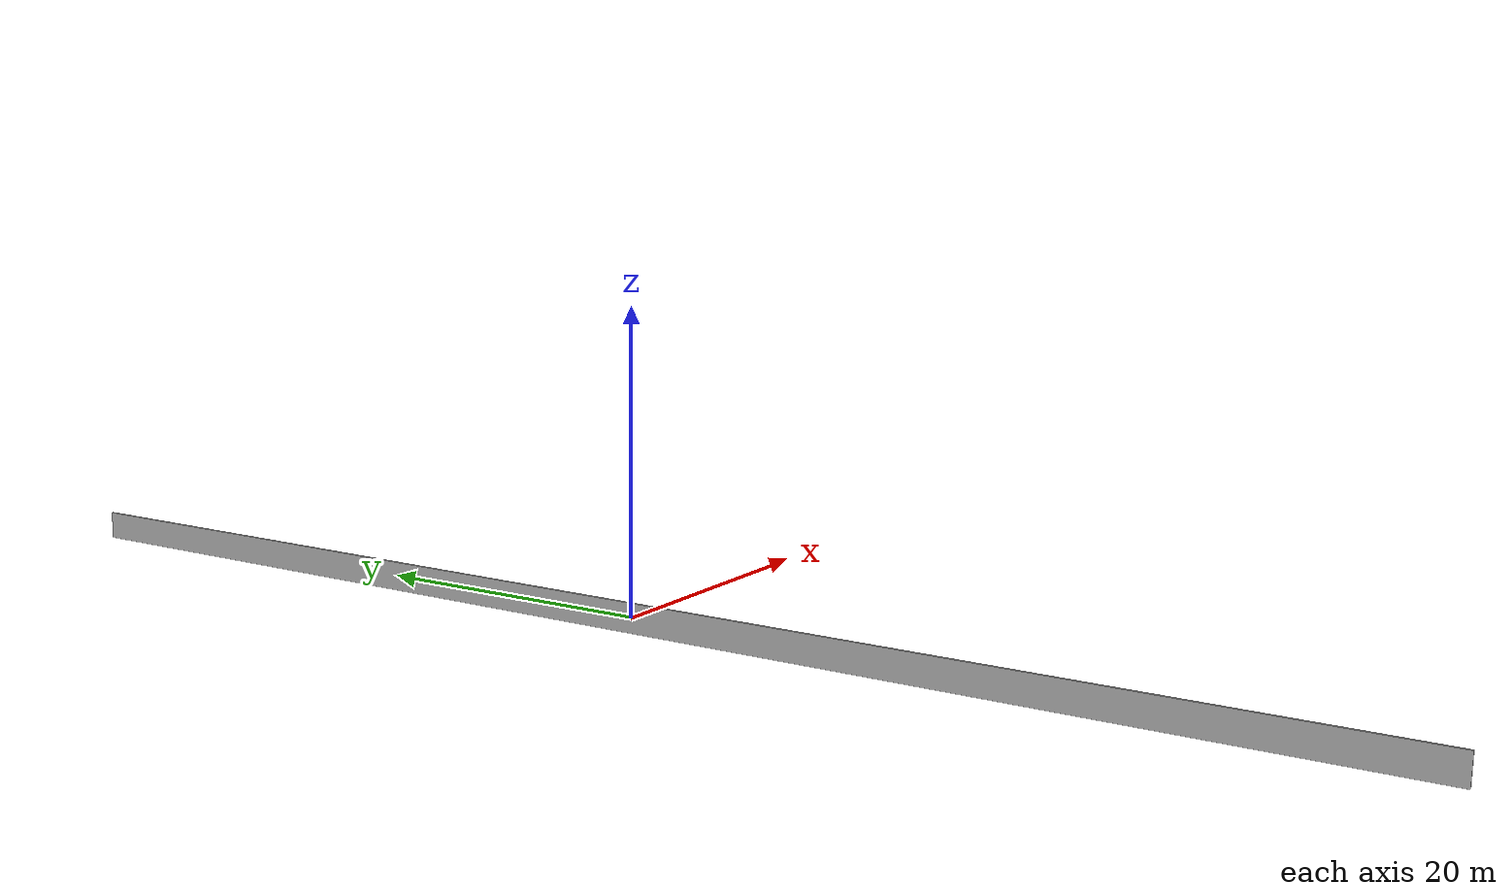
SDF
<?xml version='1.0'?>
<sdf version='1.6'>
  <model name="obs_wall_env2">
    <pose frame=''>0 0 0 0 -0 0</pose>
    <static>true</static>
    <link name="wall_link">
        <inertial>
          <mass>100</mass>
        </inertial>
        <collision name="my_collision">
          <laser_retro>0</laser_retro>
          <max_contacts>10</max_contacts>
          <pose frame=''>0 0 0 0 -0 0</pose>
          <geometry>
            <box>
              <size>0.15 100 2</size>
            </box>
          </geometry>
        </collision>
        <visual name="my_visual">
          <geometry>
            <box>
              <size>0.15 100 2</size>
            </box>
          </geometry>
          <material>
            <script>
              <uri>file://media/materials/scripts/gazebo.material</uri>
              <name>Gazebo/Gray</name>
            </script>
            <ambient>1 1 1 1</ambient>
          </material>
          <transparency>0</transparency>
        </visual>
    </link>
  </model>
</sdf>
